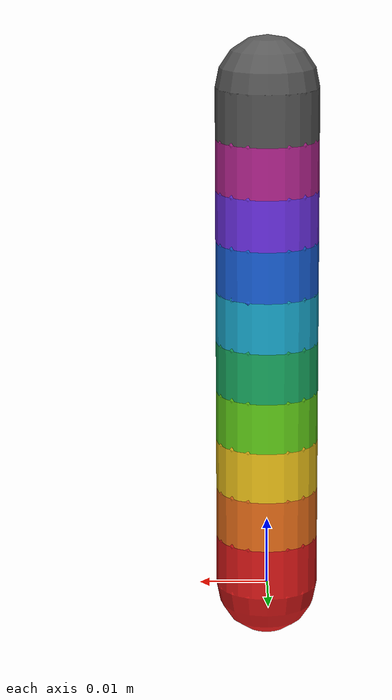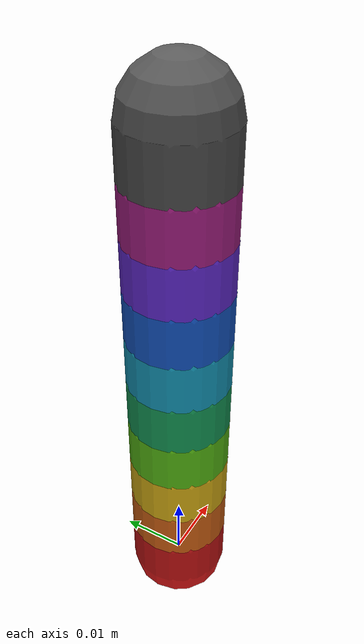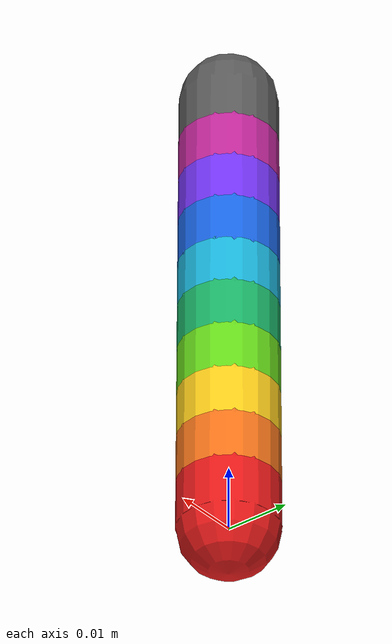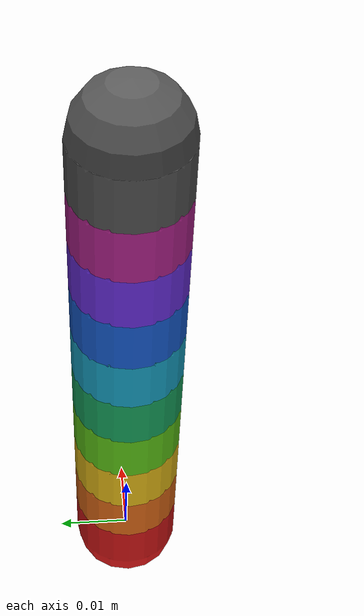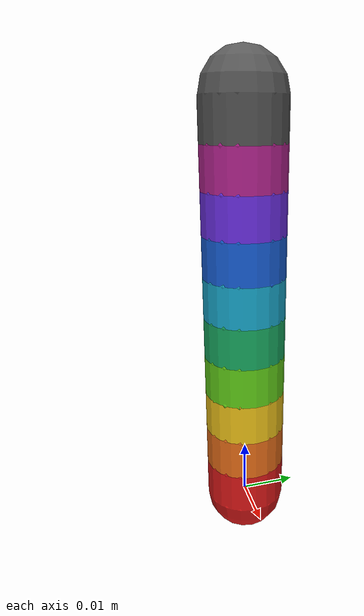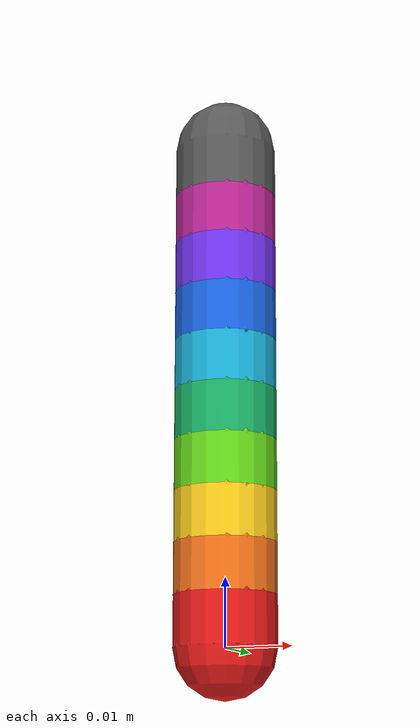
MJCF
<?xml version="1.0"?>
<mujoco model="continuum_backbone">
  <compiler angle="degree" coordinate="local"/>
  <option integrator="Euler" timestep="0.001"/>

  <default>
    <joint limited="true" range="-4 4" stiffness="0.04" damping="0.005" armature="0.0001"/>
    <geom type="capsule" size="0.0075" density="1000" friction="0.6 0.05 0.002" rgba="0.8 0.8 0.8 1"/>
  </default>

  <worldbody>
    <body name="base" pos="0 0 0">
      <!-- ===================== Backbone (Segment 1) ===================== -->
      <body name="seg1_base" pos="0 0 0">
        <body name="seg1_v1" pos="0 0 0">
          <geom name="seg1_v1_geom" fromto="0 0 0  0 0 0.0075" rgba="0.90 0.10 0.10 1"/>
          <joint name="seg1_j1_yaw" type="hinge" axis="0 -1 0" pos="0 0 0"/>

          <body name="seg1_v2" pos="0 0 0.0075">
            <geom name="seg1_v2_geom" fromto="0 0 0  0 0 0.0075" rgba="0.95 0.45 0.10 1"/>
            <joint name="seg1_j2_pitch" type="hinge" axis="-1 0 0" pos="0 0 0"/>

            <body name="seg1_v3" pos="0 0 0.0075">
              <geom name="seg1_v3_geom" fromto="0 0 0  0 0 0.0075" rgba="0.98 0.80 0.10 1"/>
              <joint name="seg1_j3_yaw" type="hinge" axis="0 -1 0" pos="0 0 0"/>

              <body name="seg1_v4" pos="0 0 0.0075">
                <geom name="seg1_v4_geom" fromto="0 0 0  0 0 0.0075" rgba="0.40 0.85 0.10 1"/>
                <joint name="seg1_j4_pitch" type="hinge" axis="-1 0 0" pos="0 0 0"/>

                <body name="seg1_v5" pos="0 0 0.0075">
                  <geom name="seg1_v5_geom" fromto="0 0 0  0 0 0.0075" rgba="0.10 0.70 0.40 1"/>
                  <joint name="seg1_j5_yaw" type="hinge" axis="0 -1 0" pos="0 0 0"/>

                  <body name="seg1_v6" pos="0 0 0.0075">
                    <geom name="seg1_v6_geom" fromto="0 0 0  0 0 0.0075" rgba="0.10 0.70 0.85 1"/>
                    <joint name="seg1_j6_pitch" type="hinge" axis="-1 0 0" pos="0 0 0"/>

                    <body name="seg1_v7" pos="0 0 0.0075">
                      <geom name="seg1_v7_geom" fromto="0 0 0  0 0 0.0075" rgba="0.10 0.40 0.90 1"/>
                      <joint name="seg1_j7_yaw" type="hinge" axis="0 -1 0" pos="0 0 0"/>

                      <body name="seg1_v8" pos="0 0 0.0075">
                        <geom name="seg1_v8_geom" fromto="0 0 0  0 0 0.0075" rgba="0.45 0.20 0.95 1"/>
                        <joint name="seg1_j8_pitch" type="hinge" axis="-1 0 0" pos="0 0 0"/>

                        <body name="seg1_v9" pos="0 0 0.0075">
                          <geom name="seg1_v9_geom" fromto="0 0 0  0 0 0.0075" rgba="0.75 0.15 0.60 1"/>

                          <body name="seg1_v10" pos="0 0 0.0075">
                            <geom name="seg1_v10_geom" fromto="0 0 0  0 0 0.0075" rgba="0.35 0.35 0.35 1"/>
                          </body>

                        </body>
                      </body>
                    </body>
                  </body>
                </body>
              </body>
            </body>
          </body>
        </body>
      </body>
    </body>
  </worldbody>

  <actuator>
    <position name="u_seg1_j1" joint="seg1_j1_yaw" kp="200" ctrlrange="-3.5 3.5"/>
    <position name="u_seg1_j2" joint="seg1_j2_pitch" kp="200" ctrlrange="-3.5 3.5"/>
  </actuator>
</mujoco>
